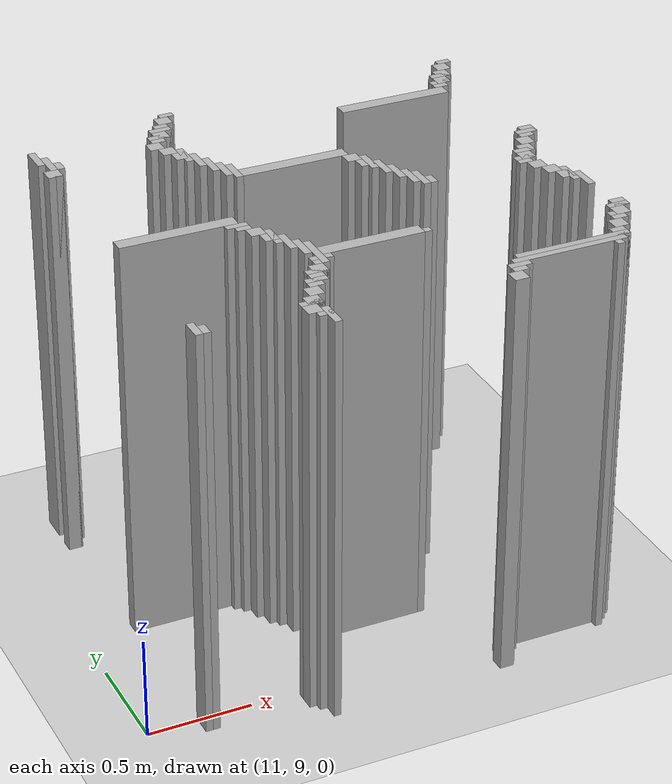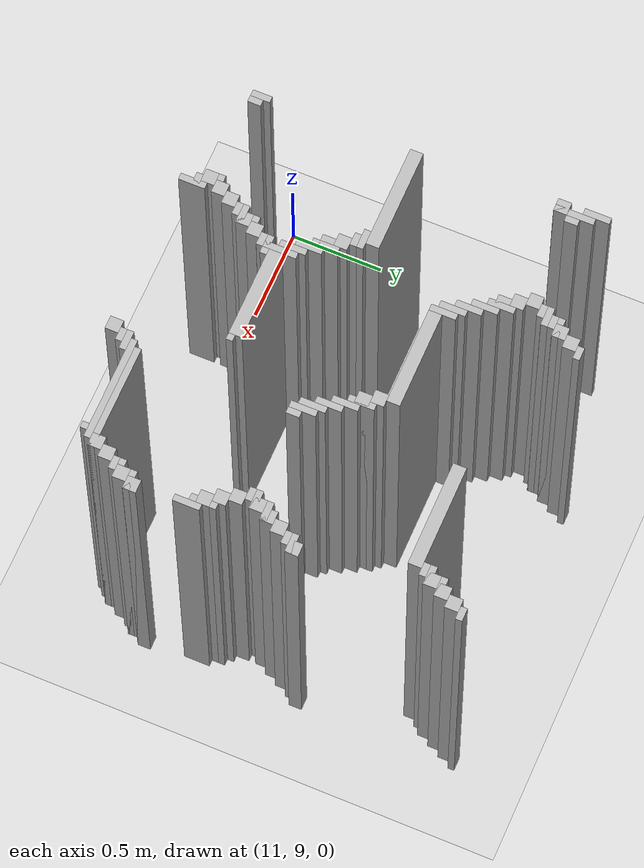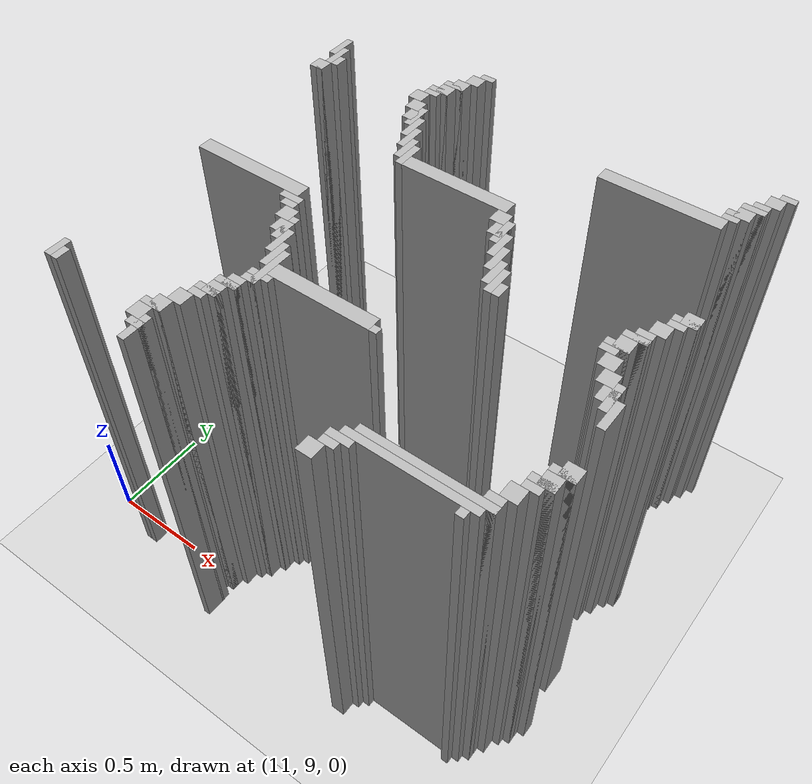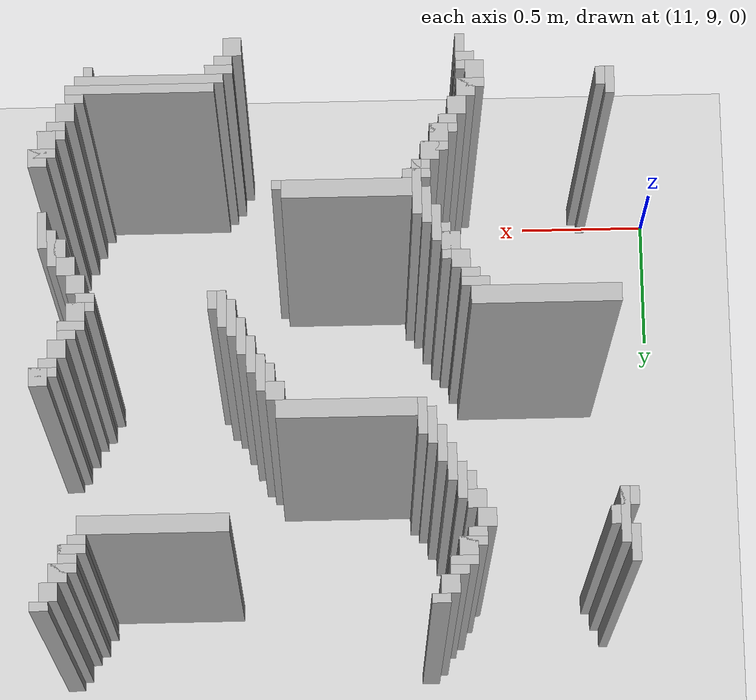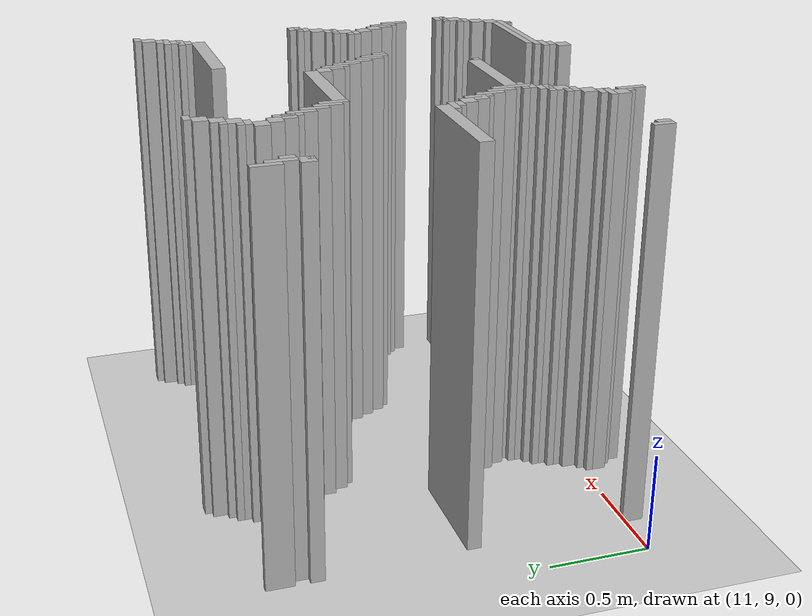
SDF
<sdf version="1.6">
 <world name="slam_world">
  <model name="ground_plane">
   <static>true</static>
   <link name="link">
    <collision name="collision">
     <geometry><plane><normal>0 0 1</normal><size>100 100</size></plane></geometry>
    </collision>
    <visual name="visual">
     <geometry><plane><normal>0 0 1</normal><size>100 100</size></plane></geometry>
     <material>
      <ambient>0.8 0.8 0.8 1</ambient>
      <diffuse>0.8 0.8 0.8 1</diffuse>
      <specular>0.8 0.8 0.8 1</specular>
     </material>
    </visual>
   </link>
  </model>
  <model name="wall_2146">
   <static>true</static>
   <pose>11.937354988399072 10.910672853828306 1.0 0 0 0</pose>
   <link name="link">
    <collision name="collision">
     <geometry><box><size>0.06960556844547564 0.03480278422273782 2.0</size></box></geometry>
    </collision>
    <visual name="visual">
     <geometry><box><size>0.06960556844547564 0.03480278422273782 2.0</size></box></geometry>
     <material><ambient>0.5 0.5 0.5 1</ambient><diffuse>0.7 0.7 0.7 1</diffuse></material>
    </visual>
   </link>
  </model>
  <model name="wall_2147">
   <static>true</static>
   <pose>13.39907192575406 10.910672853828306 1.0 0 0 0</pose>
   <link name="link">
    <collision name="collision">
     <geometry><box><size>0.06960556844547564 0.03480278422273782 2.0</size></box></geometry>
    </collision>
    <visual name="visual">
     <geometry><box><size>0.06960556844547564 0.03480278422273782 2.0</size></box></geometry>
     <material><ambient>0.5 0.5 0.5 1</ambient><diffuse>0.7 0.7 0.7 1</diffuse></material>
    </visual>
   </link>
  </model>
  <model name="wall_2159">
   <static>true</static>
   <pose>11.902552204176333 10.8584686774942 1.0 0 0 0</pose>
   <link name="link">
    <collision name="collision">
     <geometry><box><size>0.06960556844547564 0.06960556844547564 2.0</size></box></geometry>
    </collision>
    <visual name="visual">
     <geometry><box><size>0.06960556844547564 0.06960556844547564 2.0</size></box></geometry>
     <material><ambient>0.5 0.5 0.5 1</ambient><diffuse>0.7 0.7 0.7 1</diffuse></material>
    </visual>
   </link>
  </model>
  <model name="wall_2160">
   <static>true</static>
   <pose>13.364269141531322 10.8584686774942 1.0 0 0 0</pose>
   <link name="link">
    <collision name="collision">
     <geometry><box><size>0.06960556844547564 0.06960556844547564 2.0</size></box></geometry>
    </collision>
    <visual name="visual">
     <geometry><box><size>0.06960556844547564 0.06960556844547564 2.0</size></box></geometry>
     <material><ambient>0.5 0.5 0.5 1</ambient><diffuse>0.7 0.7 0.7 1</diffuse></material>
    </visual>
   </link>
  </model>
  <model name="wall_2172">
   <static>true</static>
   <pose>11.867749419953595 10.788863109048723 1.0 0 0 0</pose>
   <link name="link">
    <collision name="collision">
     <geometry><box><size>0.06960556844547564 0.06960556844547564 2.0</size></box></geometry>
    </collision>
    <visual name="visual">
     <geometry><box><size>0.06960556844547564 0.06960556844547564 2.0</size></box></geometry>
     <material><ambient>0.5 0.5 0.5 1</ambient><diffuse>0.7 0.7 0.7 1</diffuse></material>
    </visual>
   </link>
  </model>
  <model name="wall_2173">
   <static>true</static>
   <pose>13.329466357308585 10.788863109048723 1.0 0 0 0</pose>
   <link name="link">
    <collision name="collision">
     <geometry><box><size>0.06960556844547564 0.06960556844547564 2.0</size></box></geometry>
    </collision>
    <visual name="visual">
     <geometry><box><size>0.06960556844547564 0.06960556844547564 2.0</size></box></geometry>
     <material><ambient>0.5 0.5 0.5 1</ambient><diffuse>0.7 0.7 0.7 1</diffuse></material>
    </visual>
   </link>
  </model>
  <model name="wall_2184">
   <static>true</static>
   <pose>11.223897911832946 10.719257540603248 1.0 0 0 0</pose>
   <link name="link">
    <collision name="collision">
     <geometry><box><size>0.03480278422273782 0.13921113689095127 2.0</size></box></geometry>
    </collision>
    <visual name="visual">
     <geometry><box><size>0.03480278422273782 0.13921113689095127 2.0</size></box></geometry>
     <material><ambient>0.5 0.5 0.5 1</ambient><diffuse>0.7 0.7 0.7 1</diffuse></material>
    </visual>
   </link>
  </model>
  <model name="wall_2185">
   <static>true</static>
   <pose>11.850348027842227 10.771461716937354 1.0 0 0 0</pose>
   <link name="link">
    <collision name="collision">
     <geometry><box><size>0.10440835266821345 0.03480278422273782 2.0</size></box></geometry>
    </collision>
    <visual name="visual">
     <geometry><box><size>0.10440835266821345 0.03480278422273782 2.0</size></box></geometry>
     <material><ambient>0.5 0.5 0.5 1</ambient><diffuse>0.7 0.7 0.7 1</diffuse></material>
    </visual>
   </link>
  </model>
  <model name="wall_2186">
   <static>true</static>
   <pose>13.312064965197216 10.771461716937354 1.0 0 0 0</pose>
   <link name="link">
    <collision name="collision">
     <geometry><box><size>0.10440835266821345 0.03480278422273782 2.0</size></box></geometry>
    </collision>
    <visual name="visual">
     <geometry><box><size>0.10440835266821345 0.03480278422273782 2.0</size></box></geometry>
     <material><ambient>0.5 0.5 0.5 1</ambient><diffuse>0.7 0.7 0.7 1</diffuse></material>
    </visual>
   </link>
  </model>
  <model name="wall_2193">
   <static>true</static>
   <pose>11.832946635730858 10.719257540603248 1.0 0 0 0</pose>
   <link name="link">
    <collision name="collision">
     <geometry><box><size>0.06960556844547564 0.06960556844547564 2.0</size></box></geometry>
    </collision>
    <visual name="visual">
     <geometry><box><size>0.06960556844547564 0.06960556844547564 2.0</size></box></geometry>
     <material><ambient>0.5 0.5 0.5 1</ambient><diffuse>0.7 0.7 0.7 1</diffuse></material>
    </visual>
   </link>
  </model>
  <model name="wall_2194">
   <static>true</static>
   <pose>13.294663573085847 10.719257540603248 1.0 0 0 0</pose>
   <link name="link">
    <collision name="collision">
     <geometry><box><size>0.06960556844547564 0.06960556844547564 2.0</size></box></geometry>
    </collision>
    <visual name="visual">
     <geometry><box><size>0.06960556844547564 0.06960556844547564 2.0</size></box></geometry>
     <material><ambient>0.5 0.5 0.5 1</ambient><diffuse>0.7 0.7 0.7 1</diffuse></material>
    </visual>
   </link>
  </model>
  <model name="wall_2204">
   <static>true</static>
   <pose>11.258700696055683 10.614849187935034 1.0 0 0 0</pose>
   <link name="link">
    <collision name="collision">
     <geometry><box><size>0.03480278422273782 0.2088167053364269 2.0</size></box></geometry>
    </collision>
    <visual name="visual">
     <geometry><box><size>0.03480278422273782 0.2088167053364269 2.0</size></box></geometry>
     <material><ambient>0.5 0.5 0.5 1</ambient><diffuse>0.7 0.7 0.7 1</diffuse></material>
    </visual>
   </link>
  </model>
  <model name="wall_2205">
   <static>true</static>
   <pose>11.81554524361949 10.70185614849188 1.0 0 0 0</pose>
   <link name="link">
    <collision name="collision">
     <geometry><box><size>0.10440835266821345 0.03480278422273782 2.0</size></box></geometry>
    </collision>
    <visual name="visual">
     <geometry><box><size>0.10440835266821345 0.03480278422273782 2.0</size></box></geometry>
     <material><ambient>0.5 0.5 0.5 1</ambient><diffuse>0.7 0.7 0.7 1</diffuse></material>
    </visual>
   </link>
  </model>
  <model name="wall_2206">
   <static>true</static>
   <pose>13.277262180974477 10.70185614849188 1.0 0 0 0</pose>
   <link name="link">
    <collision name="collision">
     <geometry><box><size>0.10440835266821345 0.03480278422273782 2.0</size></box></geometry>
    </collision>
    <visual name="visual">
     <geometry><box><size>0.10440835266821345 0.03480278422273782 2.0</size></box></geometry>
     <material><ambient>0.5 0.5 0.5 1</ambient><diffuse>0.7 0.7 0.7 1</diffuse></material>
    </visual>
   </link>
  </model>
  <model name="wall_2213">
   <static>true</static>
   <pose>11.79814385150812 10.66705336426914 1.0 0 0 0</pose>
   <link name="link">
    <collision name="collision">
     <geometry><box><size>0.06960556844547564 0.03480278422273782 2.0</size></box></geometry>
    </collision>
    <visual name="visual">
     <geometry><box><size>0.06960556844547564 0.03480278422273782 2.0</size></box></geometry>
     <material><ambient>0.5 0.5 0.5 1</ambient><diffuse>0.7 0.7 0.7 1</diffuse></material>
    </visual>
   </link>
  </model>
  <model name="wall_2214">
   <static>true</static>
   <pose>13.259860788863108 10.66705336426914 1.0 0 0 0</pose>
   <link name="link">
    <collision name="collision">
     <geometry><box><size>0.06960556844547564 0.03480278422273782 2.0</size></box></geometry>
    </collision>
    <visual name="visual">
     <geometry><box><size>0.06960556844547564 0.03480278422273782 2.0</size></box></geometry>
     <material><ambient>0.5 0.5 0.5 1</ambient><diffuse>0.7 0.7 0.7 1</diffuse></material>
    </visual>
   </link>
  </model>
  <model name="wall_2229">
   <static>true</static>
   <pose>11.293503480278423 10.614849187935034 1.0 0 0 0</pose>
   <link name="link">
    <collision name="collision">
     <geometry><box><size>0.03480278422273782 0.06960556844547564 2.0</size></box></geometry>
    </collision>
    <visual name="visual">
     <geometry><box><size>0.03480278422273782 0.06960556844547564 2.0</size></box></geometry>
     <material><ambient>0.5 0.5 0.5 1</ambient><diffuse>0.7 0.7 0.7 1</diffuse></material>
    </visual>
   </link>
  </model>
  <model name="wall_2230">
   <static>true</static>
   <pose>11.763341067285383 10.614849187935034 1.0 0 0 0</pose>
   <link name="link">
    <collision name="collision">
     <geometry><box><size>0.06960556844547564 0.06960556844547564 2.0</size></box></geometry>
    </collision>
    <visual name="visual">
     <geometry><box><size>0.06960556844547564 0.06960556844547564 2.0</size></box></geometry>
     <material><ambient>0.5 0.5 0.5 1</ambient><diffuse>0.7 0.7 0.7 1</diffuse></material>
    </visual>
   </link>
  </model>
  <model name="wall_2231">
   <static>true</static>
   <pose>12.981438515081207 10.614849187935034 1.0 0 0 0</pose>
   <link name="link">
    <collision name="collision">
     <geometry><box><size>0.5568445475638051 0.06960556844547564 2.0</size></box></geometry>
    </collision>
    <visual name="visual">
     <geometry><box><size>0.5568445475638051 0.06960556844547564 2.0</size></box></geometry>
     <material><ambient>0.5 0.5 0.5 1</ambient><diffuse>0.7 0.7 0.7 1</diffuse></material>
    </visual>
   </link>
  </model>
  <model name="wall_2248">
   <static>true</static>
   <pose>11.241299303944315 10.54524361948956 1.0 0 0 0</pose>
   <link name="link">
    <collision name="collision">
     <geometry><box><size>0.06960556844547564 0.06960556844547564 2.0</size></box></geometry>
    </collision>
    <visual name="visual">
     <geometry><box><size>0.06960556844547564 0.06960556844547564 2.0</size></box></geometry>
     <material><ambient>0.5 0.5 0.5 1</ambient><diffuse>0.7 0.7 0.7 1</diffuse></material>
    </visual>
   </link>
  </model>
  <model name="wall_2249">
   <static>true</static>
   <pose>11.79814385150812 10.54524361948956 1.0 0 0 0</pose>
   <link name="link">
    <collision name="collision">
     <geometry><box><size>0.06960556844547564 0.06960556844547564 2.0</size></box></geometry>
    </collision>
    <visual name="visual">
     <geometry><box><size>0.06960556844547564 0.06960556844547564 2.0</size></box></geometry>
     <material><ambient>0.5 0.5 0.5 1</ambient><diffuse>0.7 0.7 0.7 1</diffuse></material>
    </visual>
   </link>
  </model>
  <model name="wall_2266">
   <static>true</static>
   <pose>11.850348027842227 10.475638051044083 1.0 0 0 0</pose>
   <link name="link">
    <collision name="collision">
     <geometry><box><size>0.03480278422273782 0.13921113689095127 2.0</size></box></geometry>
    </collision>
    <visual name="visual">
     <geometry><box><size>0.03480278422273782 0.13921113689095127 2.0</size></box></geometry>
     <material><ambient>0.5 0.5 0.5 1</ambient><diffuse>0.7 0.7 0.7 1</diffuse></material>
    </visual>
   </link>
  </model>
  <model name="wall_2283">
   <static>true</static>
   <pose>11.832946635730858 10.475638051044083 1.0 0 0 0</pose>
   <link name="link">
    <collision name="collision">
     <geometry><box><size>0.06960556844547564 0.06960556844547564 2.0</size></box></geometry>
    </collision>
    <visual name="visual">
     <geometry><box><size>0.06960556844547564 0.06960556844547564 2.0</size></box></geometry>
     <material><ambient>0.5 0.5 0.5 1</ambient><diffuse>0.7 0.7 0.7 1</diffuse></material>
    </visual>
   </link>
  </model>
  <model name="wall_2300">
   <static>true</static>
   <pose>11.885150812064964 10.406032482598608 1.0 0 0 0</pose>
   <link name="link">
    <collision name="collision">
     <geometry><box><size>0.03480278422273782 0.13921113689095127 2.0</size></box></geometry>
    </collision>
    <visual name="visual">
     <geometry><box><size>0.03480278422273782 0.13921113689095127 2.0</size></box></geometry>
     <material><ambient>0.5 0.5 0.5 1</ambient><diffuse>0.7 0.7 0.7 1</diffuse></material>
    </visual>
   </link>
  </model>
  <model name="wall_2325">
   <static>true</static>
   <pose>11.919953596287703 10.336426914153131 1.0 0 0 0</pose>
   <link name="link">
    <collision name="collision">
     <geometry><box><size>0.03480278422273782 0.13921113689095127 2.0</size></box></geometry>
    </collision>
    <visual name="visual">
     <geometry><box><size>0.03480278422273782 0.13921113689095127 2.0</size></box></geometry>
     <material><ambient>0.5 0.5 0.5 1</ambient><diffuse>0.7 0.7 0.7 1</diffuse></material>
    </visual>
   </link>
  </model>
  <model name="wall_2342">
   <static>true</static>
   <pose>11.95475638051044 10.266821345707656 1.0 0 0 0</pose>
   <link name="link">
    <collision name="collision">
     <geometry><box><size>0.03480278422273782 0.13921113689095127 2.0</size></box></geometry>
    </collision>
    <visual name="visual">
     <geometry><box><size>0.03480278422273782 0.13921113689095127 2.0</size></box></geometry>
     <material><ambient>0.5 0.5 0.5 1</ambient><diffuse>0.7 0.7 0.7 1</diffuse></material>
    </visual>
   </link>
  </model>
  <model name="wall_2359">
   <static>true</static>
   <pose>11.989559164733178 10.232018561484919 1.0 0 0 0</pose>
   <link name="link">
    <collision name="collision">
     <geometry><box><size>0.03480278422273782 0.13921113689095127 2.0</size></box></geometry>
    </collision>
    <visual name="visual">
     <geometry><box><size>0.03480278422273782 0.13921113689095127 2.0</size></box></geometry>
     <material><ambient>0.5 0.5 0.5 1</ambient><diffuse>0.7 0.7 0.7 1</diffuse></material>
    </visual>
   </link>
  </model>
  <model name="wall_2379">
   <static>true</static>
   <pose>12.267981438515081 10.19721577726218 1.0 0 0 0</pose>
   <link name="link">
    <collision name="collision">
     <geometry><box><size>0.5220417633410672 0.06960556844547564 2.0</size></box></geometry>
    </collision>
    <visual name="visual">
     <geometry><box><size>0.5220417633410672 0.06960556844547564 2.0</size></box></geometry>
     <material><ambient>0.5 0.5 0.5 1</ambient><diffuse>0.7 0.7 0.7 1</diffuse></material>
    </visual>
   </link>
  </model>
  <model name="wall_2402">
   <static>true</static>
   <pose>12.529002320185615 10.127610208816705 1.0 0 0 0</pose>
   <link name="link">
    <collision name="collision">
     <geometry><box><size>0.06960556844547564 0.06960556844547564 2.0</size></box></geometry>
    </collision>
    <visual name="visual">
     <geometry><box><size>0.06960556844547564 0.06960556844547564 2.0</size></box></geometry>
     <material><ambient>0.5 0.5 0.5 1</ambient><diffuse>0.7 0.7 0.7 1</diffuse></material>
    </visual>
   </link>
  </model>
  <model name="wall_2418">
   <static>true</static>
   <pose>12.581206496519721 10.058004640371228 1.0 0 0 0</pose>
   <link name="link">
    <collision name="collision">
     <geometry><box><size>0.03480278422273782 0.13921113689095127 2.0</size></box></geometry>
    </collision>
    <visual name="visual">
     <geometry><box><size>0.03480278422273782 0.13921113689095127 2.0</size></box></geometry>
     <material><ambient>0.5 0.5 0.5 1</ambient><diffuse>0.7 0.7 0.7 1</diffuse></material>
    </visual>
   </link>
  </model>
  <model name="wall_2434">
   <static>true</static>
   <pose>12.563805104408353 10.058004640371228 1.0 0 0 0</pose>
   <link name="link">
    <collision name="collision">
     <geometry><box><size>0.06960556844547564 0.06960556844547564 2.0</size></box></geometry>
    </collision>
    <visual name="visual">
     <geometry><box><size>0.06960556844547564 0.06960556844547564 2.0</size></box></geometry>
     <material><ambient>0.5 0.5 0.5 1</ambient><diffuse>0.7 0.7 0.7 1</diffuse></material>
    </visual>
   </link>
  </model>
  <model name="wall_2435">
   <static>true</static>
   <pose>13.39907192575406 10.058004640371228 1.0 0 0 0</pose>
   <link name="link">
    <collision name="collision">
     <geometry><box><size>0.06960556844547564 0.06960556844547564 2.0</size></box></geometry>
    </collision>
    <visual name="visual">
     <geometry><box><size>0.06960556844547564 0.06960556844547564 2.0</size></box></geometry>
     <material><ambient>0.5 0.5 0.5 1</ambient><diffuse>0.7 0.7 0.7 1</diffuse></material>
    </visual>
   </link>
  </model>
  <model name="wall_2450">
   <static>true</static>
   <pose>12.616009280742459 9.988399071925754 1.0 0 0 0</pose>
   <link name="link">
    <collision name="collision">
     <geometry><box><size>0.03480278422273782 0.13921113689095127 2.0</size></box></geometry>
    </collision>
    <visual name="visual">
     <geometry><box><size>0.03480278422273782 0.13921113689095127 2.0</size></box></geometry>
     <material><ambient>0.5 0.5 0.5 1</ambient><diffuse>0.7 0.7 0.7 1</diffuse></material>
    </visual>
   </link>
  </model>
  <model name="wall_2451">
   <static>true</static>
   <pose>13.38167053364269 10.04060324825986 1.0 0 0 0</pose>
   <link name="link">
    <collision name="collision">
     <geometry><box><size>0.10440835266821345 0.03480278422273782 2.0</size></box></geometry>
    </collision>
    <visual name="visual">
     <geometry><box><size>0.10440835266821345 0.03480278422273782 2.0</size></box></geometry>
     <material><ambient>0.5 0.5 0.5 1</ambient><diffuse>0.7 0.7 0.7 1</diffuse></material>
    </visual>
   </link>
  </model>
  <model name="wall_2461">
   <static>true</static>
   <pose>13.364269141531322 10.005800464037122 1.0 0 0 0</pose>
   <link name="link">
    <collision name="collision">
     <geometry><box><size>0.06960556844547564 0.03480278422273782 2.0</size></box></geometry>
    </collision>
    <visual name="visual">
     <geometry><box><size>0.06960556844547564 0.03480278422273782 2.0</size></box></geometry>
     <material><ambient>0.5 0.5 0.5 1</ambient><diffuse>0.7 0.7 0.7 1</diffuse></material>
    </visual>
   </link>
  </model>
  <model name="wall_2475">
   <static>true</static>
   <pose>12.650812064965196 9.918793503480279 1.0 0 0 0</pose>
   <link name="link">
    <collision name="collision">
     <geometry><box><size>0.03480278422273782 0.13921113689095127 2.0</size></box></geometry>
    </collision>
    <visual name="visual">
     <geometry><box><size>0.03480278422273782 0.13921113689095127 2.0</size></box></geometry>
     <material><ambient>0.5 0.5 0.5 1</ambient><diffuse>0.7 0.7 0.7 1</diffuse></material>
    </visual>
   </link>
  </model>
  <model name="wall_2476">
   <static>true</static>
   <pose>13.329466357308585 9.953596287703016 1.0 0 0 0</pose>
   <link name="link">
    <collision name="collision">
     <geometry><box><size>0.06960556844547564 0.06960556844547564 2.0</size></box></geometry>
    </collision>
    <visual name="visual">
     <geometry><box><size>0.06960556844547564 0.06960556844547564 2.0</size></box></geometry>
     <material><ambient>0.5 0.5 0.5 1</ambient><diffuse>0.7 0.7 0.7 1</diffuse></material>
    </visual>
   </link>
  </model>
  <model name="wall_2491">
   <static>true</static>
   <pose>12.685614849187935 9.849187935034802 1.0 0 0 0</pose>
   <link name="link">
    <collision name="collision">
     <geometry><box><size>0.03480278422273782 0.13921113689095127 2.0</size></box></geometry>
    </collision>
    <visual name="visual">
     <geometry><box><size>0.03480278422273782 0.13921113689095127 2.0</size></box></geometry>
     <material><ambient>0.5 0.5 0.5 1</ambient><diffuse>0.7 0.7 0.7 1</diffuse></material>
    </visual>
   </link>
  </model>
  <model name="wall_2492">
   <static>true</static>
   <pose>13.294663573085847 9.88399071925754 1.0 0 0 0</pose>
   <link name="link">
    <collision name="collision">
     <geometry><box><size>0.06960556844547564 0.06960556844547564 2.0</size></box></geometry>
    </collision>
    <visual name="visual">
     <geometry><box><size>0.06960556844547564 0.06960556844547564 2.0</size></box></geometry>
     <material><ambient>0.5 0.5 0.5 1</ambient><diffuse>0.7 0.7 0.7 1</diffuse></material>
    </visual>
   </link>
  </model>
  <model name="wall_2507">
   <static>true</static>
   <pose>12.720417633410673 9.814385150812065 1.0 0 0 0</pose>
   <link name="link">
    <collision name="collision">
     <geometry><box><size>0.03480278422273782 0.13921113689095127 2.0</size></box></geometry>
    </collision>
    <visual name="visual">
     <geometry><box><size>0.03480278422273782 0.13921113689095127 2.0</size></box></geometry>
     <material><ambient>0.5 0.5 0.5 1</ambient><diffuse>0.7 0.7 0.7 1</diffuse></material>
    </visual>
   </link>
  </model>
  <model name="wall_2508">
   <static>true</static>
   <pose>13.277262180974477 9.86658932714617 1.0 0 0 0</pose>
   <link name="link">
    <collision name="collision">
     <geometry><box><size>0.10440835266821345 0.03480278422273782 2.0</size></box></geometry>
    </collision>
    <visual name="visual">
     <geometry><box><size>0.10440835266821345 0.03480278422273782 2.0</size></box></geometry>
     <material><ambient>0.5 0.5 0.5 1</ambient><diffuse>0.7 0.7 0.7 1</diffuse></material>
    </visual>
   </link>
  </model>
  <model name="wall_2518">
   <static>true</static>
   <pose>13.259860788863108 9.814385150812065 1.0 0 0 0</pose>
   <link name="link">
    <collision name="collision">
     <geometry><box><size>0.06960556844547564 0.06960556844547564 2.0</size></box></geometry>
    </collision>
    <visual name="visual">
     <geometry><box><size>0.06960556844547564 0.06960556844547564 2.0</size></box></geometry>
     <material><ambient>0.5 0.5 0.5 1</ambient><diffuse>0.7 0.7 0.7 1</diffuse></material>
    </visual>
   </link>
  </model>
  <model name="wall_2530">
   <static>true</static>
   <pose>11.519721577726218 9.779582366589327 1.0 0 0 0</pose>
   <link name="link">
    <collision name="collision">
     <geometry><box><size>0.5568445475638051 0.06960556844547564 2.0</size></box></geometry>
    </collision>
    <visual name="visual">
     <geometry><box><size>0.5568445475638051 0.06960556844547564 2.0</size></box></geometry>
     <material><ambient>0.5 0.5 0.5 1</ambient><diffuse>0.7 0.7 0.7 1</diffuse></material>
    </visual>
   </link>
  </model>
  <model name="wall_2531">
   <static>true</static>
   <pose>12.75522041763341 9.779582366589327 1.0 0 0 0</pose>
   <link name="link">
    <collision name="collision">
     <geometry><box><size>0.03480278422273782 0.06960556844547564 2.0</size></box></geometry>
    </collision>
    <visual name="visual">
     <geometry><box><size>0.03480278422273782 0.06960556844547564 2.0</size></box></geometry>
     <material><ambient>0.5 0.5 0.5 1</ambient><diffuse>0.7 0.7 0.7 1</diffuse></material>
    </visual>
   </link>
  </model>
  <model name="wall_2532">
   <static>true</static>
   <pose>13.24245939675174 9.796983758700696 1.0 0 0 0</pose>
   <link name="link">
    <collision name="collision">
     <geometry><box><size>0.10440835266821345 0.03480278422273782 2.0</size></box></geometry>
    </collision>
    <visual name="visual">
     <geometry><box><size>0.10440835266821345 0.03480278422273782 2.0</size></box></geometry>
     <material><ambient>0.5 0.5 0.5 1</ambient><diffuse>0.7 0.7 0.7 1</diffuse></material>
    </visual>
   </link>
  </model>
  <model name="wall_2541">
   <static>true</static>
   <pose>13.22505800464037 9.762180974477959 1.0 0 0 0</pose>
   <link name="link">
    <collision name="collision">
     <geometry><box><size>0.06960556844547564 0.03480278422273782 2.0</size></box></geometry>
    </collision>
    <visual name="visual">
     <geometry><box><size>0.06960556844547564 0.03480278422273782 2.0</size></box></geometry>
     <material><ambient>0.5 0.5 0.5 1</ambient><diffuse>0.7 0.7 0.7 1</diffuse></material>
    </visual>
   </link>
  </model>
  <model name="wall_2550">
   <static>true</static>
   <pose>11.780742459396752 9.72737819025522 1.0 0 0 0</pose>
   <link name="link">
    <collision name="collision">
     <geometry><box><size>0.10440835266821345 0.03480278422273782 2.0</size></box></geometry>
    </collision>
    <visual name="visual">
     <geometry><box><size>0.10440835266821345 0.03480278422273782 2.0</size></box></geometry>
     <material><ambient>0.5 0.5 0.5 1</ambient><diffuse>0.7 0.7 0.7 1</diffuse></material>
    </visual>
   </link>
  </model>
  <model name="wall_2551">
   <static>true</static>
   <pose>13.259860788863108 9.70997679814385 1.0 0 0 0</pose>
   <link name="link">
    <collision name="collision">
     <geometry><box><size>0.06960556844547564 0.06960556844547564 2.0</size></box></geometry>
    </collision>
    <visual name="visual">
     <geometry><box><size>0.06960556844547564 0.06960556844547564 2.0</size></box></geometry>
     <material><ambient>0.5 0.5 0.5 1</ambient><diffuse>0.7 0.7 0.7 1</diffuse></material>
    </visual>
   </link>
  </model>
  <model name="wall_2557">
   <static>true</static>
   <pose>11.79814385150812 9.692575406032482 1.0 0 0 0</pose>
   <link name="link">
    <collision name="collision">
     <geometry><box><size>0.06960556844547564 0.03480278422273782 2.0</size></box></geometry>
    </collision>
    <visual name="visual">
     <geometry><box><size>0.06960556844547564 0.03480278422273782 2.0</size></box></geometry>
     <material><ambient>0.5 0.5 0.5 1</ambient><diffuse>0.7 0.7 0.7 1</diffuse></material>
    </visual>
   </link>
  </model>
  <model name="wall_2567">
   <static>true</static>
   <pose>11.832946635730858 9.640371229698376 1.0 0 0 0</pose>
   <link name="link">
    <collision name="collision">
     <geometry><box><size>0.06960556844547564 0.06960556844547564 2.0</size></box></geometry>
    </collision>
    <visual name="visual">
     <geometry><box><size>0.06960556844547564 0.06960556844547564 2.0</size></box></geometry>
     <material><ambient>0.5 0.5 0.5 1</ambient><diffuse>0.7 0.7 0.7 1</diffuse></material>
    </visual>
   </link>
  </model>
  <model name="wall_2568">
   <static>true</static>
   <pose>13.294663573085847 9.640371229698376 1.0 0 0 0</pose>
   <link name="link">
    <collision name="collision">
     <geometry><box><size>0.06960556844547564 0.06960556844547564 2.0</size></box></geometry>
    </collision>
    <visual name="visual">
     <geometry><box><size>0.06960556844547564 0.06960556844547564 2.0</size></box></geometry>
     <material><ambient>0.5 0.5 0.5 1</ambient><diffuse>0.7 0.7 0.7 1</diffuse></material>
    </visual>
   </link>
  </model>
  <model name="wall_2578">
   <static>true</static>
   <pose>11.885150812064964 9.5707656612529 1.0 0 0 0</pose>
   <link name="link">
    <collision name="collision">
     <geometry><box><size>0.03480278422273782 0.13921113689095127 2.0</size></box></geometry>
    </collision>
    <visual name="visual">
     <geometry><box><size>0.03480278422273782 0.13921113689095127 2.0</size></box></geometry>
     <material><ambient>0.5 0.5 0.5 1</ambient><diffuse>0.7 0.7 0.7 1</diffuse></material>
    </visual>
   </link>
  </model>
  <model name="wall_2579">
   <static>true</static>
   <pose>13.346867749419953 9.5707656612529 1.0 0 0 0</pose>
   <link name="link">
    <collision name="collision">
     <geometry><box><size>0.03480278422273782 0.13921113689095127 2.0</size></box></geometry>
    </collision>
    <visual name="visual">
     <geometry><box><size>0.03480278422273782 0.13921113689095127 2.0</size></box></geometry>
     <material><ambient>0.5 0.5 0.5 1</ambient><diffuse>0.7 0.7 0.7 1</diffuse></material>
    </visual>
   </link>
  </model>
  <model name="wall_2589">
   <static>true</static>
   <pose>11.867749419953595 9.5707656612529 1.0 0 0 0</pose>
   <link name="link">
    <collision name="collision">
     <geometry><box><size>0.06960556844547564 0.06960556844547564 2.0</size></box></geometry>
    </collision>
    <visual name="visual">
     <geometry><box><size>0.06960556844547564 0.06960556844547564 2.0</size></box></geometry>
     <material><ambient>0.5 0.5 0.5 1</ambient><diffuse>0.7 0.7 0.7 1</diffuse></material>
    </visual>
   </link>
  </model>
  <model name="wall_2590">
   <static>true</static>
   <pose>13.329466357308585 9.5707656612529 1.0 0 0 0</pose>
   <link name="link">
    <collision name="collision">
     <geometry><box><size>0.06960556844547564 0.06960556844547564 2.0</size></box></geometry>
    </collision>
    <visual name="visual">
     <geometry><box><size>0.06960556844547564 0.06960556844547564 2.0</size></box></geometry>
     <material><ambient>0.5 0.5 0.5 1</ambient><diffuse>0.7 0.7 0.7 1</diffuse></material>
    </visual>
   </link>
  </model>
  <model name="wall_2600">
   <static>true</static>
   <pose>11.919953596287703 9.501160092807424 1.0 0 0 0</pose>
   <link name="link">
    <collision name="collision">
     <geometry><box><size>0.03480278422273782 0.13921113689095127 2.0</size></box></geometry>
    </collision>
    <visual name="visual">
     <geometry><box><size>0.03480278422273782 0.13921113689095127 2.0</size></box></geometry>
     <material><ambient>0.5 0.5 0.5 1</ambient><diffuse>0.7 0.7 0.7 1</diffuse></material>
    </visual>
   </link>
  </model>
  <model name="wall_2601">
   <static>true</static>
   <pose>13.38167053364269 9.501160092807424 1.0 0 0 0</pose>
   <link name="link">
    <collision name="collision">
     <geometry><box><size>0.03480278422273782 0.13921113689095127 2.0</size></box></geometry>
    </collision>
    <visual name="visual">
     <geometry><box><size>0.03480278422273782 0.13921113689095127 2.0</size></box></geometry>
     <material><ambient>0.5 0.5 0.5 1</ambient><diffuse>0.7 0.7 0.7 1</diffuse></material>
    </visual>
   </link>
  </model>
  <model name="wall_2614">
   <static>true</static>
   <pose>11.95475638051044 9.431554524361948 1.0 0 0 0</pose>
   <link name="link">
    <collision name="collision">
     <geometry><box><size>0.03480278422273782 0.13921113689095127 2.0</size></box></geometry>
    </collision>
    <visual name="visual">
     <geometry><box><size>0.03480278422273782 0.13921113689095127 2.0</size></box></geometry>
     <material><ambient>0.5 0.5 0.5 1</ambient><diffuse>0.7 0.7 0.7 1</diffuse></material>
    </visual>
   </link>
  </model>
  <model name="wall_2625">
   <static>true</static>
   <pose>11.989559164733178 9.361948955916473 1.0 0 0 0</pose>
   <link name="link">
    <collision name="collision">
     <geometry><box><size>0.03480278422273782 0.2088167053364269 2.0</size></box></geometry>
    </collision>
    <visual name="visual">
     <geometry><box><size>0.03480278422273782 0.2088167053364269 2.0</size></box></geometry>
     <material><ambient>0.5 0.5 0.5 1</ambient><diffuse>0.7 0.7 0.7 1</diffuse></material>
    </visual>
   </link>
  </model>
  <model name="wall_2641">
   <static>true</static>
   <pose>12.250580046403712 9.361948955916473 1.0 0 0 0</pose>
   <link name="link">
    <collision name="collision">
     <geometry><box><size>0.4872389791183295 0.06960556844547564 2.0</size></box></geometry>
    </collision>
    <visual name="visual">
     <geometry><box><size>0.4872389791183295 0.06960556844547564 2.0</size></box></geometry>
     <material><ambient>0.5 0.5 0.5 1</ambient><diffuse>0.7 0.7 0.7 1</diffuse></material>
    </visual>
   </link>
  </model>
  <model name="wall_2653">
   <static>true</static>
   <pose>12.511600928074245 9.344547563805104 1.0 0 0 0</pose>
   <link name="link">
    <collision name="collision">
     <geometry><box><size>0.03480278422273782 0.03480278422273782 2.0</size></box></geometry>
    </collision>
    <visual name="visual">
     <geometry><box><size>0.03480278422273782 0.03480278422273782 2.0</size></box></geometry>
     <material><ambient>0.5 0.5 0.5 1</ambient><diffuse>0.7 0.7 0.7 1</diffuse></material>
    </visual>
   </link>
  </model>
  <model name="wall_2669">
   <static>true</static>
   <pose>11.989559164733178 9.309744779582367 1.0 0 0 0</pose>
   <link name="link">
    <collision name="collision">
     <geometry><box><size>0.10440835266821345 0.03480278422273782 2.0</size></box></geometry>
    </collision>
    <visual name="visual">
     <geometry><box><size>0.10440835266821345 0.03480278422273782 2.0</size></box></geometry>
     <material><ambient>0.5 0.5 0.5 1</ambient><diffuse>0.7 0.7 0.7 1</diffuse></material>
    </visual>
   </link>
  </model>
  <model name="wall_2684">
   <static>true</static>
   <pose>11.97215777262181 9.274941995359628 1.0 0 0 0</pose>
   <link name="link">
    <collision name="collision">
     <geometry><box><size>0.06960556844547564 0.03480278422273782 2.0</size></box></geometry>
    </collision>
    <visual name="visual">
     <geometry><box><size>0.06960556844547564 0.03480278422273782 2.0</size></box></geometry>
     <material><ambient>0.5 0.5 0.5 1</ambient><diffuse>0.7 0.7 0.7 1</diffuse></material>
    </visual>
   </link>
  </model>
  <model name="wall_2700">
   <static>true</static>
   <pose>11.937354988399072 9.222737819025522 1.0 0 0 0</pose>
   <link name="link">
    <collision name="collision">
     <geometry><box><size>0.06960556844547564 0.06960556844547564 2.0</size></box></geometry>
    </collision>
    <visual name="visual">
     <geometry><box><size>0.06960556844547564 0.06960556844547564 2.0</size></box></geometry>
     <material><ambient>0.5 0.5 0.5 1</ambient><diffuse>0.7 0.7 0.7 1</diffuse></material>
    </visual>
   </link>
  </model>
  <model name="wall_2701">
   <static>true</static>
   <pose>13.39907192575406 9.222737819025522 1.0 0 0 0</pose>
   <link name="link">
    <collision name="collision">
     <geometry><box><size>0.06960556844547564 0.06960556844547564 2.0</size></box></geometry>
    </collision>
    <visual name="visual">
     <geometry><box><size>0.06960556844547564 0.06960556844547564 2.0</size></box></geometry>
     <material><ambient>0.5 0.5 0.5 1</ambient><diffuse>0.7 0.7 0.7 1</diffuse></material>
    </visual>
   </link>
  </model>
  <model name="wall_2718">
   <static>true</static>
   <pose>11.919953596287703 9.205336426914153 1.0 0 0 0</pose>
   <link name="link">
    <collision name="collision">
     <geometry><box><size>0.10440835266821345 0.03480278422273782 2.0</size></box></geometry>
    </collision>
    <visual name="visual">
     <geometry><box><size>0.10440835266821345 0.03480278422273782 2.0</size></box></geometry>
     <material><ambient>0.5 0.5 0.5 1</ambient><diffuse>0.7 0.7 0.7 1</diffuse></material>
    </visual>
   </link>
  </model>
  <model name="wall_2719">
   <static>true</static>
   <pose>13.38167053364269 9.205336426914153 1.0 0 0 0</pose>
   <link name="link">
    <collision name="collision">
     <geometry><box><size>0.10440835266821345 0.03480278422273782 2.0</size></box></geometry>
    </collision>
    <visual name="visual">
     <geometry><box><size>0.10440835266821345 0.03480278422273782 2.0</size></box></geometry>
     <material><ambient>0.5 0.5 0.5 1</ambient><diffuse>0.7 0.7 0.7 1</diffuse></material>
    </visual>
   </link>
  </model>
  <model name="wall_2731">
   <static>true</static>
   <pose>11.902552204176333 9.153132250580047 1.0 0 0 0</pose>
   <link name="link">
    <collision name="collision">
     <geometry><box><size>0.06960556844547564 0.06960556844547564 2.0</size></box></geometry>
    </collision>
    <visual name="visual">
     <geometry><box><size>0.06960556844547564 0.06960556844547564 2.0</size></box></geometry>
     <material><ambient>0.5 0.5 0.5 1</ambient><diffuse>0.7 0.7 0.7 1</diffuse></material>
    </visual>
   </link>
  </model>
  <model name="wall_2732">
   <static>true</static>
   <pose>13.364269141531322 9.153132250580047 1.0 0 0 0</pose>
   <link name="link">
    <collision name="collision">
     <geometry><box><size>0.06960556844547564 0.06960556844547564 2.0</size></box></geometry>
    </collision>
    <visual name="visual">
     <geometry><box><size>0.06960556844547564 0.06960556844547564 2.0</size></box></geometry>
     <material><ambient>0.5 0.5 0.5 1</ambient><diffuse>0.7 0.7 0.7 1</diffuse></material>
    </visual>
   </link>
  </model>
  <model name="wall_2748">
   <static>true</static>
   <pose>11.885150812064964 9.135730858468676 1.0 0 0 0</pose>
   <link name="link">
    <collision name="collision">
     <geometry><box><size>0.10440835266821345 0.03480278422273782 2.0</size></box></geometry>
    </collision>
    <visual name="visual">
     <geometry><box><size>0.10440835266821345 0.03480278422273782 2.0</size></box></geometry>
     <material><ambient>0.5 0.5 0.5 1</ambient><diffuse>0.7 0.7 0.7 1</diffuse></material>
    </visual>
   </link>
  </model>
  <model name="wall_2749">
   <static>true</static>
   <pose>13.346867749419953 9.135730858468676 1.0 0 0 0</pose>
   <link name="link">
    <collision name="collision">
     <geometry><box><size>0.10440835266821345 0.03480278422273782 2.0</size></box></geometry>
    </collision>
    <visual name="visual">
     <geometry><box><size>0.10440835266821345 0.03480278422273782 2.0</size></box></geometry>
     <material><ambient>0.5 0.5 0.5 1</ambient><diffuse>0.7 0.7 0.7 1</diffuse></material>
    </visual>
   </link>
  </model>
  <model name="wall_2760">
   <static>true</static>
   <pose>11.867749419953595 9.100928074245939 1.0 0 0 0</pose>
   <link name="link">
    <collision name="collision">
     <geometry><box><size>0.06960556844547564 0.03480278422273782 2.0</size></box></geometry>
    </collision>
    <visual name="visual">
     <geometry><box><size>0.06960556844547564 0.03480278422273782 2.0</size></box></geometry>
     <material><ambient>0.5 0.5 0.5 1</ambient><diffuse>0.7 0.7 0.7 1</diffuse></material>
    </visual>
   </link>
  </model>
  <model name="wall_2761">
   <static>true</static>
   <pose>13.329466357308585 9.100928074245939 1.0 0 0 0</pose>
   <link name="link">
    <collision name="collision">
     <geometry><box><size>0.06960556844547564 0.03480278422273782 2.0</size></box></geometry>
    </collision>
    <visual name="visual">
     <geometry><box><size>0.06960556844547564 0.03480278422273782 2.0</size></box></geometry>
     <material><ambient>0.5 0.5 0.5 1</ambient><diffuse>0.7 0.7 0.7 1</diffuse></material>
    </visual>
   </link>
  </model>
  <model name="wall_2777">
   <static>true</static>
   <pose>11.832946635730858 9.048723897911833 1.0 0 0 0</pose>
   <link name="link">
    <collision name="collision">
     <geometry><box><size>0.06960556844547564 0.06960556844547564 2.0</size></box></geometry>
    </collision>
    <visual name="visual">
     <geometry><box><size>0.06960556844547564 0.06960556844547564 2.0</size></box></geometry>
     <material><ambient>0.5 0.5 0.5 1</ambient><diffuse>0.7 0.7 0.7 1</diffuse></material>
    </visual>
   </link>
  </model>
  <model name="wall_2778">
   <static>true</static>
   <pose>13.294663573085847 9.048723897911833 1.0 0 0 0</pose>
   <link name="link">
    <collision name="collision">
     <geometry><box><size>0.06960556844547564 0.06960556844547564 2.0</size></box></geometry>
    </collision>
    <visual name="visual">
     <geometry><box><size>0.06960556844547564 0.06960556844547564 2.0</size></box></geometry>
     <material><ambient>0.5 0.5 0.5 1</ambient><diffuse>0.7 0.7 0.7 1</diffuse></material>
    </visual>
   </link>
  </model>
  <model name="wall_2794">
   <static>true</static>
   <pose>11.258700696055683 8.961716937354987 1.0 0 0 0</pose>
   <link name="link">
    <collision name="collision">
     <geometry><box><size>0.03480278422273782 0.10440835266821345 2.0</size></box></geometry>
    </collision>
    <visual name="visual">
     <geometry><box><size>0.03480278422273782 0.10440835266821345 2.0</size></box></geometry>
     <material><ambient>0.5 0.5 0.5 1</ambient><diffuse>0.7 0.7 0.7 1</diffuse></material>
    </visual>
   </link>
  </model>
  <model name="wall_2795">
   <static>true</static>
   <pose>11.79814385150812 8.979118329466356 1.0 0 0 0</pose>
   <link name="link">
    <collision name="collision">
     <geometry><box><size>0.06960556844547564 0.06960556844547564 2.0</size></box></geometry>
    </collision>
    <visual name="visual">
     <geometry><box><size>0.06960556844547564 0.06960556844547564 2.0</size></box></geometry>
     <material><ambient>0.5 0.5 0.5 1</ambient><diffuse>0.7 0.7 0.7 1</diffuse></material>
    </visual>
   </link>
  </model>
  <model name="wall_2796">
   <static>true</static>
   <pose>13.259860788863108 8.979118329466356 1.0 0 0 0</pose>
   <link name="link">
    <collision name="collision">
     <geometry><box><size>0.06960556844547564 0.06960556844547564 2.0</size></box></geometry>
    </collision>
    <visual name="visual">
     <geometry><box><size>0.06960556844547564 0.06960556844547564 2.0</size></box></geometry>
     <material><ambient>0.5 0.5 0.5 1</ambient><diffuse>0.7 0.7 0.7 1</diffuse></material>
    </visual>
   </link>
  </model>
  <model name="wall_2808">
   <static>true</static>
   <pose>11.293503480278423 8.944315545243619 1.0 0 0 0</pose>
   <link name="link">
    <collision name="collision">
     <geometry><box><size>0.03480278422273782 0.06960556844547564 2.0</size></box></geometry>
    </collision>
    <visual name="visual">
     <geometry><box><size>0.03480278422273782 0.06960556844547564 2.0</size></box></geometry>
     <material><ambient>0.5 0.5 0.5 1</ambient><diffuse>0.7 0.7 0.7 1</diffuse></material>
    </visual>
   </link>
  </model>
  <model name="wall_2809">
   <static>true</static>
   <pose>11.780742459396752 8.961716937354987 1.0 0 0 0</pose>
   <link name="link">
    <collision name="collision">
     <geometry><box><size>0.10440835266821345 0.03480278422273782 2.0</size></box></geometry>
    </collision>
    <visual name="visual">
     <geometry><box><size>0.10440835266821345 0.03480278422273782 2.0</size></box></geometry>
     <material><ambient>0.5 0.5 0.5 1</ambient><diffuse>0.7 0.7 0.7 1</diffuse></material>
    </visual>
   </link>
  </model>
  <model name="wall_2810">
   <static>true</static>
   <pose>13.016241299303944 8.961716937354987 1.0 0 0 0</pose>
   <link name="link">
    <collision name="collision">
     <geometry><box><size>0.5568445475638051 0.03480278422273782 2.0</size></box></geometry>
    </collision>
    <visual name="visual">
     <geometry><box><size>0.5568445475638051 0.03480278422273782 2.0</size></box></geometry>
     <material><ambient>0.5 0.5 0.5 1</ambient><diffuse>0.7 0.7 0.7 1</diffuse></material>
    </visual>
   </link>
  </model>
  <model name="wall_2821">
   <static>true</static>
   <pose>11.763341067285383 8.909512761020881 1.0 0 0 0</pose>
   <link name="link">
    <collision name="collision">
     <geometry><box><size>0.06960556844547564 0.06960556844547564 2.0</size></box></geometry>
    </collision>
    <visual name="visual">
     <geometry><box><size>0.06960556844547564 0.06960556844547564 2.0</size></box></geometry>
     <material><ambient>0.5 0.5 0.5 1</ambient><diffuse>0.7 0.7 0.7 1</diffuse></material>
    </visual>
   </link>
  </model>
  <model name="wall_2822">
   <static>true</static>
   <pose>12.981438515081207 8.92691415313225 1.0 0 0 0</pose>
   <link name="link">
    <collision name="collision">
     <geometry><box><size>0.5568445475638051 0.03480278422273782 2.0</size></box></geometry>
    </collision>
    <visual name="visual">
     <geometry><box><size>0.5568445475638051 0.03480278422273782 2.0</size></box></geometry>
     <material><ambient>0.5 0.5 0.5 1</ambient><diffuse>0.7 0.7 0.7 1</diffuse></material>
    </visual>
   </link>
  </model>
  <model name="wall_2838">
   <static>true</static>
   <pose>11.81554524361949 8.839907192575406 1.0 0 0 0</pose>
   <link name="link">
    <collision name="collision">
     <geometry><box><size>0.03480278422273782 0.13921113689095127 2.0</size></box></geometry>
    </collision>
    <visual name="visual">
     <geometry><box><size>0.03480278422273782 0.13921113689095127 2.0</size></box></geometry>
     <material><ambient>0.5 0.5 0.5 1</ambient><diffuse>0.7 0.7 0.7 1</diffuse></material>
    </visual>
   </link>
  </model>
  <model name="wall_2839">
   <static>true</static>
   <pose>12.720417633410673 8.892111368909513 1.0 0 0 0</pose>
   <link name="link">
    <collision name="collision">
     <geometry><box><size>0.10440835266821345 0.03480278422273782 2.0</size></box></geometry>
    </collision>
    <visual name="visual">
     <geometry><box><size>0.10440835266821345 0.03480278422273782 2.0</size></box></geometry>
     <material><ambient>0.5 0.5 0.5 1</ambient><diffuse>0.7 0.7 0.7 1</diffuse></material>
    </visual>
   </link>
  </model>
  <model name="wall_2840">
   <static>true</static>
   <pose>13.207656612529002 8.892111368909513 1.0 0 0 0</pose>
   <link name="link">
    <collision name="collision">
     <geometry><box><size>0.03480278422273782 0.03480278422273782 2.0</size></box></geometry>
    </collision>
    <visual name="visual">
     <geometry><box><size>0.03480278422273782 0.03480278422273782 2.0</size></box></geometry>
     <material><ambient>0.5 0.5 0.5 1</ambient><diffuse>0.7 0.7 0.7 1</diffuse></material>
    </visual>
   </link>
  </model>
  <model name="wall_2854">
   <static>true</static>
   <pose>11.79814385150812 8.857308584686775 1.0 0 0 0</pose>
   <link name="link">
    <collision name="collision">
     <geometry><box><size>0.06960556844547564 0.03480278422273782 2.0</size></box></geometry>
    </collision>
    <visual name="visual">
     <geometry><box><size>0.06960556844547564 0.03480278422273782 2.0</size></box></geometry>
     <material><ambient>0.5 0.5 0.5 1</ambient><diffuse>0.7 0.7 0.7 1</diffuse></material>
    </visual>
   </link>
  </model>
  <model name="wall_2855">
   <static>true</static>
   <pose>12.703016241299304 8.857308584686775 1.0 0 0 0</pose>
   <link name="link">
    <collision name="collision">
     <geometry><box><size>0.06960556844547564 0.03480278422273782 2.0</size></box></geometry>
    </collision>
    <visual name="visual">
     <geometry><box><size>0.06960556844547564 0.03480278422273782 2.0</size></box></geometry>
     <material><ambient>0.5 0.5 0.5 1</ambient><diffuse>0.7 0.7 0.7 1</diffuse></material>
    </visual>
   </link>
  </model>
  <model name="wall_2870">
   <static>true</static>
   <pose>12.668213457076565 8.805104408352667 1.0 0 0 0</pose>
   <link name="link">
    <collision name="collision">
     <geometry><box><size>0.06960556844547564 0.06960556844547564 2.0</size></box></geometry>
    </collision>
    <visual name="visual">
     <geometry><box><size>0.06960556844547564 0.06960556844547564 2.0</size></box></geometry>
     <material><ambient>0.5 0.5 0.5 1</ambient><diffuse>0.7 0.7 0.7 1</diffuse></material>
    </visual>
   </link>
  </model>
 </world>
</sdf>
